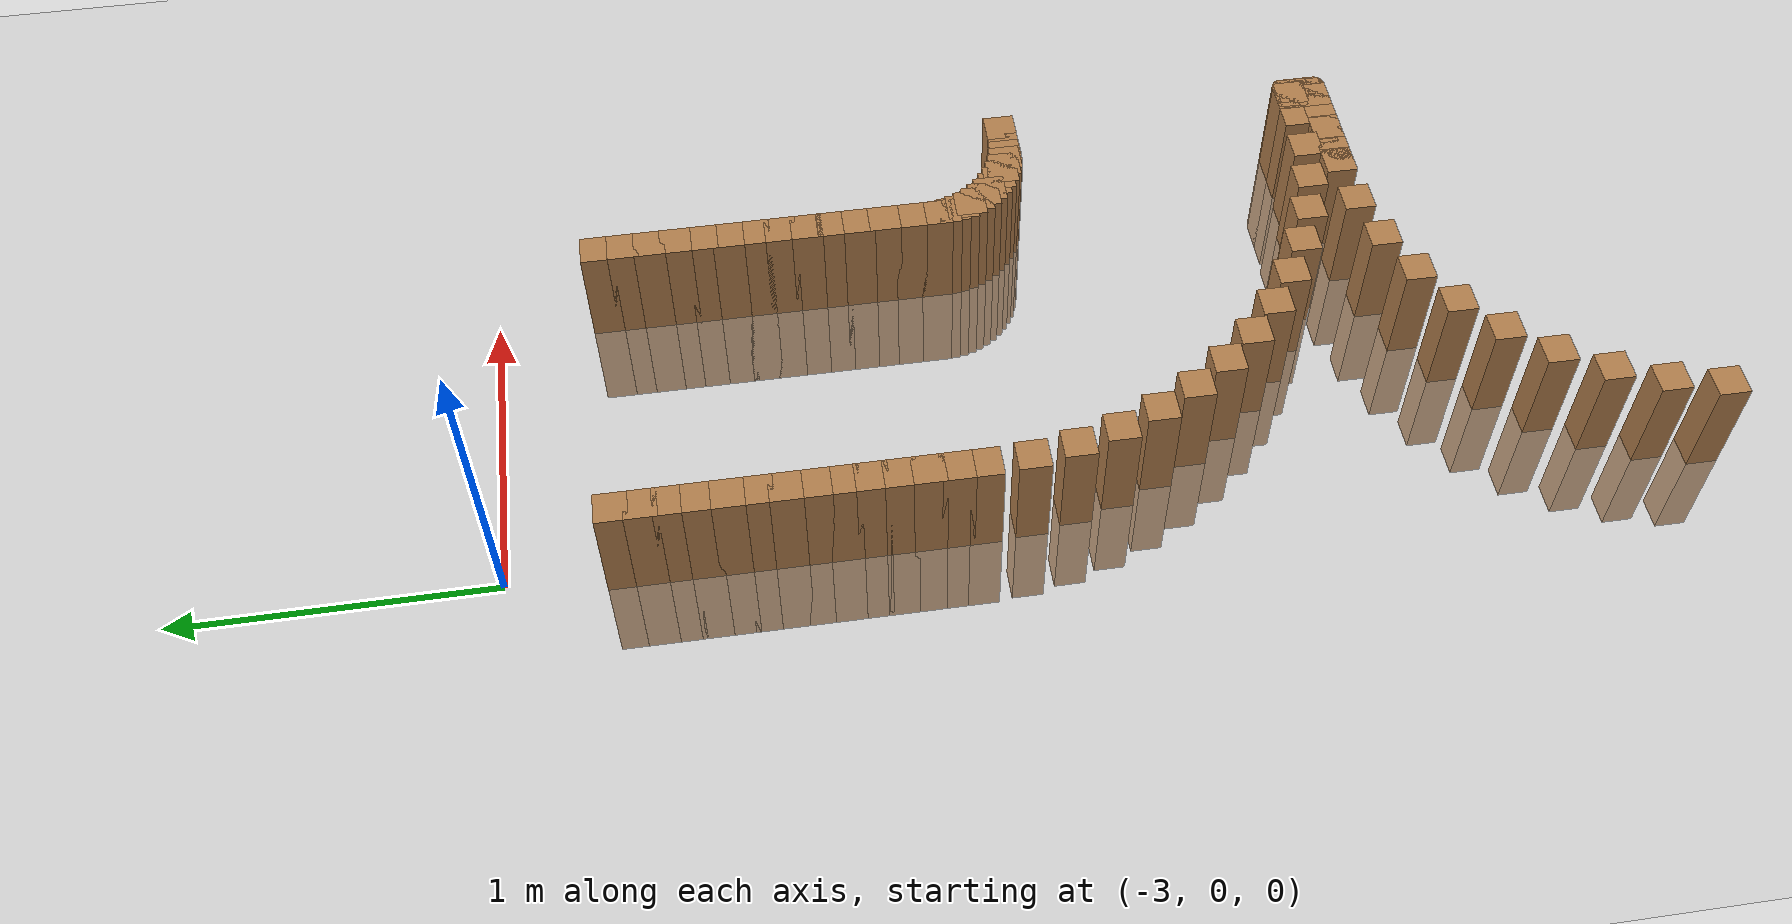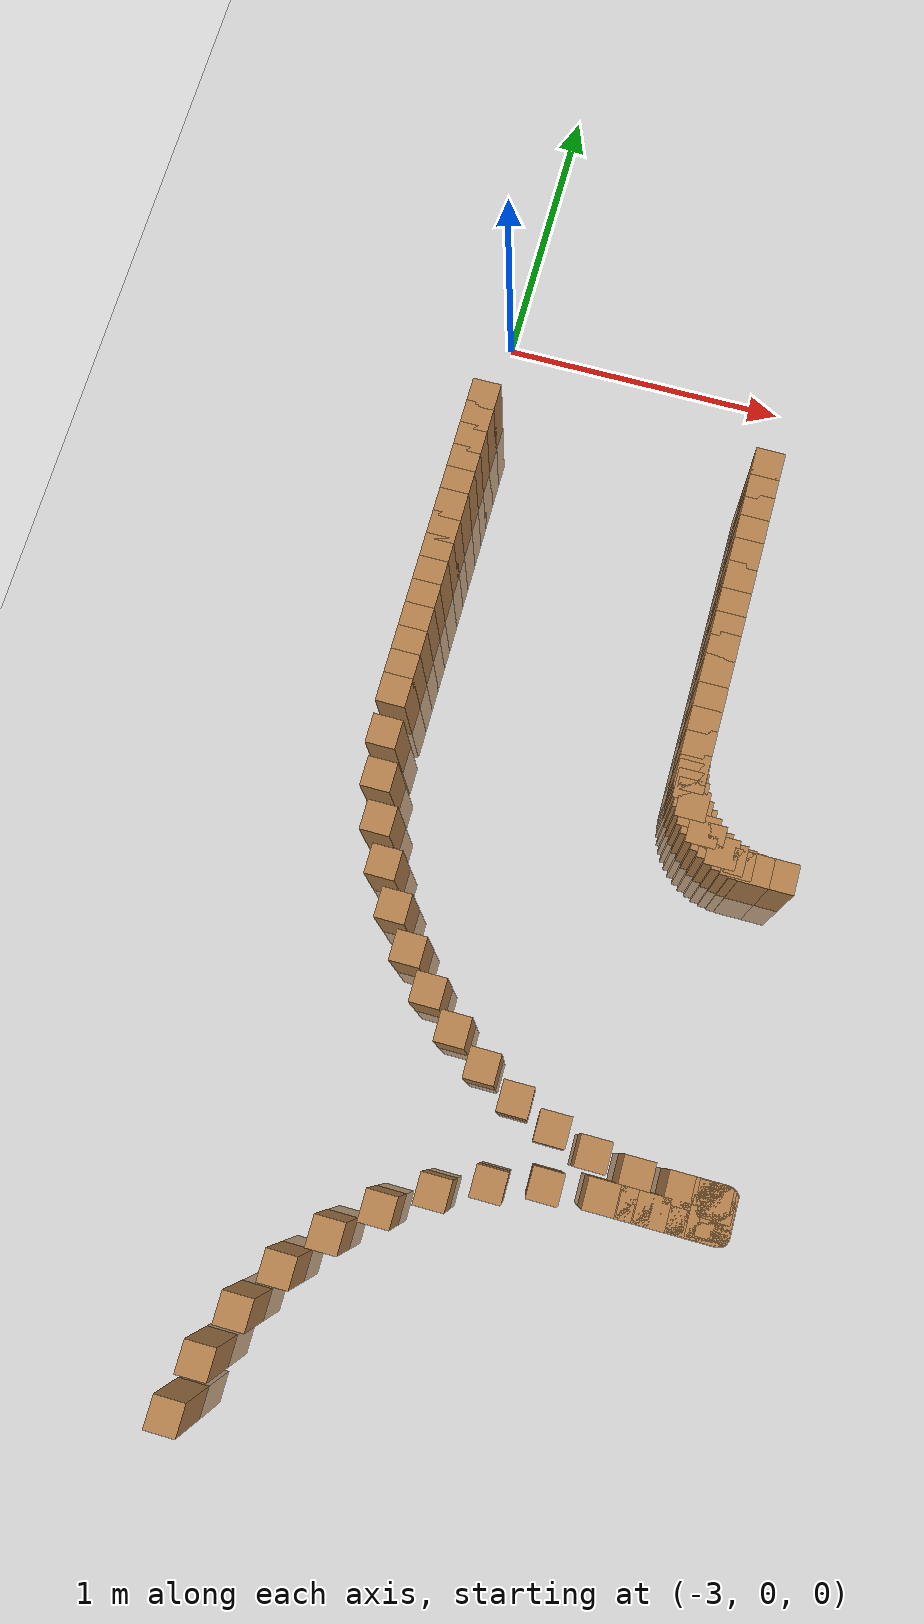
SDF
<sdf version="1.6">
 <world name="default">
  <model name="ground_plane">
   <static>1</static>
   <link name="link">
    <collision name="collision">
     <geometry><plane><normal>0 0 1</normal><size>100 100</size></plane></geometry>
     <surface><friction><ode><mu>100</mu><mu2>50</mu2></ode></friction></surface>
    </collision>
    <visual name="visual">
     <cast_shadows>0</cast_shadows>
     <geometry><plane><normal>0 0 1</normal><size>100 100</size></plane></geometry>
     <material>
      <script><uri>file://media/materials/scripts/gazebo.material</uri><name>Gazebo/Grey</name></script>
     </material>
    </visual>
   </link>
  </model>
  <model name="track">
   <link name="inner_325">
    <pose>-2.000000 -0.354644 0.000000 0 -0 0</pose>
    <collision name="collision"><geometry><box><size>0.1 0.1 0.7</size></box></geometry></collision>
    <visual name="visual">
     <geometry><box><size>0.1 0.1 0.7</size></box></geometry>
     <material>
      <script><uri>file://media/materials/scripts/gazebo.material</uri><name>Gazebo/Wood</name></script>
     </material>
    </visual>
   </link>
   <link name="inner_326">
    <pose>-2.000000 -0.438590 0.000000 0 -0 0</pose>
    <collision name="collision"><geometry><box><size>0.1 0.1 0.7</size></box></geometry></collision>
    <visual name="visual">
     <geometry><box><size>0.1 0.1 0.7</size></box></geometry>
     <material>
      <script><uri>file://media/materials/scripts/gazebo.material</uri><name>Gazebo/Wood</name></script>
     </material>
    </visual>
   </link>
   <link name="inner_327">
    <pose>-2.000000 -0.522536 0.000000 0 -0 0</pose>
    <collision name="collision"><geometry><box><size>0.1 0.1 0.7</size></box></geometry></collision>
    <visual name="visual">
     <geometry><box><size>0.1 0.1 0.7</size></box></geometry>
     <material>
      <script><uri>file://media/materials/scripts/gazebo.material</uri><name>Gazebo/Wood</name></script>
     </material>
    </visual>
   </link>
   <link name="inner_328">
    <pose>-2.000000 -0.606483 0.000000 0 -0 0</pose>
    <collision name="collision"><geometry><box><size>0.1 0.1 0.7</size></box></geometry></collision>
    <visual name="visual">
     <geometry><box><size>0.1 0.1 0.7</size></box></geometry>
     <material>
      <script><uri>file://media/materials/scripts/gazebo.material</uri><name>Gazebo/Wood</name></script>
     </material>
    </visual>
   </link>
   <link name="inner_329">
    <pose>-2.000000 -0.690429 0.000000 0 -0 0</pose>
    <collision name="collision"><geometry><box><size>0.1 0.1 0.7</size></box></geometry></collision>
    <visual name="visual">
     <geometry><box><size>0.1 0.1 0.7</size></box></geometry>
     <material>
      <script><uri>file://media/materials/scripts/gazebo.material</uri><name>Gazebo/Wood</name></script>
     </material>
    </visual>
   </link>
   <link name="inner_330">
    <pose>-2.000000 -0.774375 0.000000 0 -0 0</pose>
    <collision name="collision"><geometry><box><size>0.1 0.1 0.7</size></box></geometry></collision>
    <visual name="visual">
     <geometry><box><size>0.1 0.1 0.7</size></box></geometry>
     <material>
      <script><uri>file://media/materials/scripts/gazebo.material</uri><name>Gazebo/Wood</name></script>
     </material>
    </visual>
   </link>
   <link name="inner_331">
    <pose>-2.000000 -0.858322 0.000000 0 -0 0</pose>
    <collision name="collision"><geometry><box><size>0.1 0.1 0.7</size></box></geometry></collision>
    <visual name="visual">
     <geometry><box><size>0.1 0.1 0.7</size></box></geometry>
     <material>
      <script><uri>file://media/materials/scripts/gazebo.material</uri><name>Gazebo/Wood</name></script>
     </material>
    </visual>
   </link>
   <link name="inner_332">
    <pose>-2.000000 -0.942268 0.000000 0 -0 0</pose>
    <collision name="collision"><geometry><box><size>0.1 0.1 0.7</size></box></geometry></collision>
    <visual name="visual">
     <geometry><box><size>0.1 0.1 0.7</size></box></geometry>
     <material>
      <script><uri>file://media/materials/scripts/gazebo.material</uri><name>Gazebo/Wood</name></script>
     </material>
    </visual>
   </link>
   <link name="inner_333">
    <pose>-2.000000 -1.026214 0.000000 0 -0 0</pose>
    <collision name="collision"><geometry><box><size>0.1 0.1 0.7</size></box></geometry></collision>
    <visual name="visual">
     <geometry><box><size>0.1 0.1 0.7</size></box></geometry>
     <material>
      <script><uri>file://media/materials/scripts/gazebo.material</uri><name>Gazebo/Wood</name></script>
     </material>
    </visual>
   </link>
   <link name="inner_334">
    <pose>-2.000000 -1.110161 0.000000 0 -0 0</pose>
    <collision name="collision"><geometry><box><size>0.1 0.1 0.7</size></box></geometry></collision>
    <visual name="visual">
     <geometry><box><size>0.1 0.1 0.7</size></box></geometry>
     <material>
      <script><uri>file://media/materials/scripts/gazebo.material</uri><name>Gazebo/Wood</name></script>
     </material>
    </visual>
   </link>
   <link name="inner_335">
    <pose>-2.000000 -1.194107 0.000000 0 -0 0</pose>
    <collision name="collision"><geometry><box><size>0.1 0.1 0.7</size></box></geometry></collision>
    <visual name="visual">
     <geometry><box><size>0.1 0.1 0.7</size></box></geometry>
     <material>
      <script><uri>file://media/materials/scripts/gazebo.material</uri><name>Gazebo/Wood</name></script>
     </material>
    </visual>
   </link>
   <link name="inner_336">
    <pose>-2.000000 -1.278053 0.000000 0 -0 0</pose>
    <collision name="collision"><geometry><box><size>0.1 0.1 0.7</size></box></geometry></collision>
    <visual name="visual">
     <geometry><box><size>0.1 0.1 0.7</size></box></geometry>
     <material>
      <script><uri>file://media/materials/scripts/gazebo.material</uri><name>Gazebo/Wood</name></script>
     </material>
    </visual>
   </link>
   <link name="inner_337">
    <pose>-2.000000 -1.362000 0.000000 0 -0 0</pose>
    <collision name="collision"><geometry><box><size>0.1 0.1 0.7</size></box></geometry></collision>
    <visual name="visual">
     <geometry><box><size>0.1 0.1 0.7</size></box></geometry>
     <material>
      <script><uri>file://media/materials/scripts/gazebo.material</uri><name>Gazebo/Wood</name></script>
     </material>
    </visual>
   </link>
   <link name="inner_338">
    <pose>-2.000000 -1.445946 0.000000 0 -0 0</pose>
    <collision name="collision"><geometry><box><size>0.1 0.1 0.7</size></box></geometry></collision>
    <visual name="visual">
     <geometry><box><size>0.1 0.1 0.7</size></box></geometry>
     <material>
      <script><uri>file://media/materials/scripts/gazebo.material</uri><name>Gazebo/Wood</name></script>
     </material>
    </visual>
   </link>
   <link name="inner_339">
    <pose>-1.998301 -1.476207 0.000000 0 -0 0</pose>
    <collision name="collision"><geometry><box><size>0.1 0.1 0.7</size></box></geometry></collision>
    <visual name="visual">
     <geometry><box><size>0.1 0.1 0.7</size></box></geometry>
     <material>
      <script><uri>file://media/materials/scripts/gazebo.material</uri><name>Gazebo/Wood</name></script>
     </material>
    </visual>
   </link>
   <link name="inner_340">
    <pose>-1.993224 -1.506087 0.000000 0 -0 0</pose>
    <collision name="collision"><geometry><box><size>0.1 0.1 0.7</size></box></geometry></collision>
    <visual name="visual">
     <geometry><box><size>0.1 0.1 0.7</size></box></geometry>
     <material>
      <script><uri>file://media/materials/scripts/gazebo.material</uri><name>Gazebo/Wood</name></script>
     </material>
    </visual>
   </link>
   <link name="inner_341">
    <pose>-1.984833 -1.535211 0.000000 0 -0 0</pose>
    <collision name="collision"><geometry><box><size>0.1 0.1 0.7</size></box></geometry></collision>
    <visual name="visual">
     <geometry><box><size>0.1 0.1 0.7</size></box></geometry>
     <material>
      <script><uri>file://media/materials/scripts/gazebo.material</uri><name>Gazebo/Wood</name></script>
     </material>
    </visual>
   </link>
   <link name="inner_342">
    <pose>-1.973235 -1.563212 0.000000 0 -0 0</pose>
    <collision name="collision"><geometry><box><size>0.1 0.1 0.7</size></box></geometry></collision>
    <visual name="visual">
     <geometry><box><size>0.1 0.1 0.7</size></box></geometry>
     <material>
      <script><uri>file://media/materials/scripts/gazebo.material</uri><name>Gazebo/Wood</name></script>
     </material>
    </visual>
   </link>
   <link name="inner_343">
    <pose>-1.958574 -1.589738 0.000000 0 -0 0</pose>
    <collision name="collision"><geometry><box><size>0.1 0.1 0.7</size></box></geometry></collision>
    <visual name="visual">
     <geometry><box><size>0.1 0.1 0.7</size></box></geometry>
     <material>
      <script><uri>file://media/materials/scripts/gazebo.material</uri><name>Gazebo/Wood</name></script>
     </material>
    </visual>
   </link>
   <link name="inner_344">
    <pose>-1.941036 -1.614457 0.000000 0 -0 0</pose>
    <collision name="collision"><geometry><box><size>0.1 0.1 0.7</size></box></geometry></collision>
    <visual name="visual">
     <geometry><box><size>0.1 0.1 0.7</size></box></geometry>
     <material>
      <script><uri>file://media/materials/scripts/gazebo.material</uri><name>Gazebo/Wood</name></script>
     </material>
    </visual>
   </link>
   <link name="inner_345">
    <pose>-1.920840 -1.637056 0.000000 0 -0 0</pose>
    <collision name="collision"><geometry><box><size>0.1 0.1 0.7</size></box></geometry></collision>
    <visual name="visual">
     <geometry><box><size>0.1 0.1 0.7</size></box></geometry>
     <material>
      <script><uri>file://media/materials/scripts/gazebo.material</uri><name>Gazebo/Wood</name></script>
     </material>
    </visual>
   </link>
   <link name="inner_346">
    <pose>-1.898240 -1.657252 0.000000 0 -0 0</pose>
    <collision name="collision"><geometry><box><size>0.1 0.1 0.7</size></box></geometry></collision>
    <visual name="visual">
     <geometry><box><size>0.1 0.1 0.7</size></box></geometry>
     <material>
      <script><uri>file://media/materials/scripts/gazebo.material</uri><name>Gazebo/Wood</name></script>
     </material>
    </visual>
   </link>
   <link name="inner_347">
    <pose>-1.873522 -1.674790 0.000000 0 -0 0</pose>
    <collision name="collision"><geometry><box><size>0.1 0.1 0.7</size></box></geometry></collision>
    <visual name="visual">
     <geometry><box><size>0.1 0.1 0.7</size></box></geometry>
     <material>
      <script><uri>file://media/materials/scripts/gazebo.material</uri><name>Gazebo/Wood</name></script>
     </material>
    </visual>
   </link>
   <link name="inner_348">
    <pose>-1.846996 -1.689451 0.000000 0 -0 0</pose>
    <collision name="collision"><geometry><box><size>0.1 0.1 0.7</size></box></geometry></collision>
    <visual name="visual">
     <geometry><box><size>0.1 0.1 0.7</size></box></geometry>
     <material>
      <script><uri>file://media/materials/scripts/gazebo.material</uri><name>Gazebo/Wood</name></script>
     </material>
    </visual>
   </link>
   <link name="inner_349">
    <pose>-1.818994 -1.701050 0.000000 0 -0 0</pose>
    <collision name="collision"><geometry><box><size>0.1 0.1 0.7</size></box></geometry></collision>
    <visual name="visual">
     <geometry><box><size>0.1 0.1 0.7</size></box></geometry>
     <material>
      <script><uri>file://media/materials/scripts/gazebo.material</uri><name>Gazebo/Wood</name></script>
     </material>
    </visual>
   </link>
   <link name="inner_350">
    <pose>-1.789871 -1.709440 0.000000 0 -0 0</pose>
    <collision name="collision"><geometry><box><size>0.1 0.1 0.7</size></box></geometry></collision>
    <visual name="visual">
     <geometry><box><size>0.1 0.1 0.7</size></box></geometry>
     <material>
      <script><uri>file://media/materials/scripts/gazebo.material</uri><name>Gazebo/Wood</name></script>
     </material>
    </visual>
   </link>
   <link name="inner_351">
    <pose>-1.759990 -1.714517 0.000000 0 -0 0</pose>
    <collision name="collision"><geometry><box><size>0.1 0.1 0.7</size></box></geometry></collision>
    <visual name="visual">
     <geometry><box><size>0.1 0.1 0.7</size></box></geometry>
     <material>
      <script><uri>file://media/materials/scripts/gazebo.material</uri><name>Gazebo/Wood</name></script>
     </material>
    </visual>
   </link>
   <link name="inner_352">
    <pose>-1.729730 -1.716216 0.000000 0 -0 0</pose>
    <collision name="collision"><geometry><box><size>0.1 0.1 0.7</size></box></geometry></collision>
    <visual name="visual">
     <geometry><box><size>0.1 0.1 0.7</size></box></geometry>
     <material>
      <script><uri>file://media/materials/scripts/gazebo.material</uri><name>Gazebo/Wood</name></script>
     </material>
    </visual>
   </link>
   <link name="inner_353">
    <pose>-1.648649 -1.716216 0.000000 0 -0 0</pose>
    <collision name="collision"><geometry><box><size>0.1 0.1 0.7</size></box></geometry></collision>
    <visual name="visual">
     <geometry><box><size>0.1 0.1 0.7</size></box></geometry>
     <material>
      <script><uri>file://media/materials/scripts/gazebo.material</uri><name>Gazebo/Wood</name></script>
     </material>
    </visual>
   </link>
   <link name="outer_325">
    <pose>-3.000000 -0.354644 0.000000 0 -0 0</pose>
    <collision name="collision"><geometry><box><size>0.1 0.1 0.7</size></box></geometry></collision>
    <visual name="visual">
     <geometry><box><size>0.1 0.1 0.7</size></box></geometry>
     <material>
      <script><uri>file://media/materials/scripts/gazebo.material</uri><name>Gazebo/Wood</name></script>
     </material>
    </visual>
   </link>
   <link name="outer_326">
    <pose>-3.000000 -0.438590 0.000000 0 -0 0</pose>
    <collision name="collision"><geometry><box><size>0.1 0.1 0.7</size></box></geometry></collision>
    <visual name="visual">
     <geometry><box><size>0.1 0.1 0.7</size></box></geometry>
     <material>
      <script><uri>file://media/materials/scripts/gazebo.material</uri><name>Gazebo/Wood</name></script>
     </material>
    </visual>
   </link>
   <link name="outer_327">
    <pose>-3.000000 -0.522536 0.000000 0 -0 0</pose>
    <collision name="collision"><geometry><box><size>0.1 0.1 0.7</size></box></geometry></collision>
    <visual name="visual">
     <geometry><box><size>0.1 0.1 0.7</size></box></geometry>
     <material>
      <script><uri>file://media/materials/scripts/gazebo.material</uri><name>Gazebo/Wood</name></script>
     </material>
    </visual>
   </link>
   <link name="outer_328">
    <pose>-3.000000 -0.606483 0.000000 0 -0 0</pose>
    <collision name="collision"><geometry><box><size>0.1 0.1 0.7</size></box></geometry></collision>
    <visual name="visual">
     <geometry><box><size>0.1 0.1 0.7</size></box></geometry>
     <material>
      <script><uri>file://media/materials/scripts/gazebo.material</uri><name>Gazebo/Wood</name></script>
     </material>
    </visual>
   </link>
   <link name="outer_329">
    <pose>-3.000000 -0.690429 0.000000 0 -0 0</pose>
    <collision name="collision"><geometry><box><size>0.1 0.1 0.7</size></box></geometry></collision>
    <visual name="visual">
     <geometry><box><size>0.1 0.1 0.7</size></box></geometry>
     <material>
      <script><uri>file://media/materials/scripts/gazebo.material</uri><name>Gazebo/Wood</name></script>
     </material>
    </visual>
   </link>
   <link name="outer_330">
    <pose>-3.000000 -0.774375 0.000000 0 -0 0</pose>
    <collision name="collision"><geometry><box><size>0.1 0.1 0.7</size></box></geometry></collision>
    <visual name="visual">
     <geometry><box><size>0.1 0.1 0.7</size></box></geometry>
     <material>
      <script><uri>file://media/materials/scripts/gazebo.material</uri><name>Gazebo/Wood</name></script>
     </material>
    </visual>
   </link>
   <link name="outer_331">
    <pose>-3.000000 -0.858322 0.000000 0 -0 0</pose>
    <collision name="collision"><geometry><box><size>0.1 0.1 0.7</size></box></geometry></collision>
    <visual name="visual">
     <geometry><box><size>0.1 0.1 0.7</size></box></geometry>
     <material>
      <script><uri>file://media/materials/scripts/gazebo.material</uri><name>Gazebo/Wood</name></script>
     </material>
    </visual>
   </link>
   <link name="outer_332">
    <pose>-3.000000 -0.942268 0.000000 0 -0 0</pose>
    <collision name="collision"><geometry><box><size>0.1 0.1 0.7</size></box></geometry></collision>
    <visual name="visual">
     <geometry><box><size>0.1 0.1 0.7</size></box></geometry>
     <material>
      <script><uri>file://media/materials/scripts/gazebo.material</uri><name>Gazebo/Wood</name></script>
     </material>
    </visual>
   </link>
   <link name="outer_333">
    <pose>-3.000000 -1.026214 0.000000 0 -0 0</pose>
    <collision name="collision"><geometry><box><size>0.1 0.1 0.7</size></box></geometry></collision>
    <visual name="visual">
     <geometry><box><size>0.1 0.1 0.7</size></box></geometry>
     <material>
      <script><uri>file://media/materials/scripts/gazebo.material</uri><name>Gazebo/Wood</name></script>
     </material>
    </visual>
   </link>
   <link name="outer_334">
    <pose>-3.000000 -1.110161 0.000000 0 -0 0</pose>
    <collision name="collision"><geometry><box><size>0.1 0.1 0.7</size></box></geometry></collision>
    <visual name="visual">
     <geometry><box><size>0.1 0.1 0.7</size></box></geometry>
     <material>
      <script><uri>file://media/materials/scripts/gazebo.material</uri><name>Gazebo/Wood</name></script>
     </material>
    </visual>
   </link>
   <link name="outer_335">
    <pose>-3.000000 -1.194107 0.000000 0 -0 0</pose>
    <collision name="collision"><geometry><box><size>0.1 0.1 0.7</size></box></geometry></collision>
    <visual name="visual">
     <geometry><box><size>0.1 0.1 0.7</size></box></geometry>
     <material>
      <script><uri>file://media/materials/scripts/gazebo.material</uri><name>Gazebo/Wood</name></script>
     </material>
    </visual>
   </link>
   <link name="outer_336">
    <pose>-3.000000 -1.278053 0.000000 0 -0 0</pose>
    <collision name="collision"><geometry><box><size>0.1 0.1 0.7</size></box></geometry></collision>
    <visual name="visual">
     <geometry><box><size>0.1 0.1 0.7</size></box></geometry>
     <material>
      <script><uri>file://media/materials/scripts/gazebo.material</uri><name>Gazebo/Wood</name></script>
     </material>
    </visual>
   </link>
   <link name="outer_337">
    <pose>-3.000000 -1.362000 0.000000 0 -0 0</pose>
    <collision name="collision"><geometry><box><size>0.1 0.1 0.7</size></box></geometry></collision>
    <visual name="visual">
     <geometry><box><size>0.1 0.1 0.7</size></box></geometry>
     <material>
      <script><uri>file://media/materials/scripts/gazebo.material</uri><name>Gazebo/Wood</name></script>
     </material>
    </visual>
   </link>
   <link name="outer_338">
    <pose>-3.000000 -1.445946 0.000000 0 -0 0</pose>
    <collision name="collision"><geometry><box><size>0.1 0.1 0.7</size></box></geometry></collision>
    <visual name="visual">
     <geometry><box><size>0.1 0.1 0.7</size></box></geometry>
     <material>
      <script><uri>file://media/materials/scripts/gazebo.material</uri><name>Gazebo/Wood</name></script>
     </material>
    </visual>
   </link>
   <link name="outer_339">
    <pose>-2.992013 -1.588171 0.000000 0 -0 0</pose>
    <collision name="collision"><geometry><box><size>0.1 0.1 0.7</size></box></geometry></collision>
    <visual name="visual">
     <geometry><box><size>0.1 0.1 0.7</size></box></geometry>
     <material>
      <script><uri>file://media/materials/scripts/gazebo.material</uri><name>Gazebo/Wood</name></script>
     </material>
    </visual>
   </link>
   <link name="outer_340">
    <pose>-2.968152 -1.728608 0.000000 0 -0 0</pose>
    <collision name="collision"><geometry><box><size>0.1 0.1 0.7</size></box></geometry></collision>
    <visual name="visual">
     <geometry><box><size>0.1 0.1 0.7</size></box></geometry>
     <material>
      <script><uri>file://media/materials/scripts/gazebo.material</uri><name>Gazebo/Wood</name></script>
     </material>
    </visual>
   </link>
   <link name="outer_341">
    <pose>-2.928717 -1.865490 0.000000 0 -0 0</pose>
    <collision name="collision"><geometry><box><size>0.1 0.1 0.7</size></box></geometry></collision>
    <visual name="visual">
     <geometry><box><size>0.1 0.1 0.7</size></box></geometry>
     <material>
      <script><uri>file://media/materials/scripts/gazebo.material</uri><name>Gazebo/Wood</name></script>
     </material>
    </visual>
   </link>
   <link name="outer_342">
    <pose>-2.874204 -1.997096 0.000000 0 -0 0</pose>
    <collision name="collision"><geometry><box><size>0.1 0.1 0.7</size></box></geometry></collision>
    <visual name="visual">
     <geometry><box><size>0.1 0.1 0.7</size></box></geometry>
     <material>
      <script><uri>file://media/materials/scripts/gazebo.material</uri><name>Gazebo/Wood</name></script>
     </material>
    </visual>
   </link>
   <link name="outer_343">
    <pose>-2.805298 -2.121770 0.000000 0 -0 0</pose>
    <collision name="collision"><geometry><box><size>0.1 0.1 0.7</size></box></geometry></collision>
    <visual name="visual">
     <geometry><box><size>0.1 0.1 0.7</size></box></geometry>
     <material>
      <script><uri>file://media/materials/scripts/gazebo.material</uri><name>Gazebo/Wood</name></script>
     </material>
    </visual>
   </link>
   <link name="outer_344">
    <pose>-2.722867 -2.237947 0.000000 0 -0 0</pose>
    <collision name="collision"><geometry><box><size>0.1 0.1 0.7</size></box></geometry></collision>
    <visual name="visual">
     <geometry><box><size>0.1 0.1 0.7</size></box></geometry>
     <material>
      <script><uri>file://media/materials/scripts/gazebo.material</uri><name>Gazebo/Wood</name></script>
     </material>
    </visual>
   </link>
   <link name="outer_345">
    <pose>-2.627946 -2.344163 0.000000 0 -0 0</pose>
    <collision name="collision"><geometry><box><size>0.1 0.1 0.7</size></box></geometry></collision>
    <visual name="visual">
     <geometry><box><size>0.1 0.1 0.7</size></box></geometry>
     <material>
      <script><uri>file://media/materials/scripts/gazebo.material</uri><name>Gazebo/Wood</name></script>
     </material>
    </visual>
   </link>
   <link name="outer_346">
    <pose>-2.521730 -2.439083 0.000000 0 -0 0</pose>
    <collision name="collision"><geometry><box><size>0.1 0.1 0.7</size></box></geometry></collision>
    <visual name="visual">
     <geometry><box><size>0.1 0.1 0.7</size></box></geometry>
     <material>
      <script><uri>file://media/materials/scripts/gazebo.material</uri><name>Gazebo/Wood</name></script>
     </material>
    </visual>
   </link>
   <link name="outer_347">
    <pose>-2.405554 -2.521515 0.000000 0 -0 0</pose>
    <collision name="collision"><geometry><box><size>0.1 0.1 0.7</size></box></geometry></collision>
    <visual name="visual">
     <geometry><box><size>0.1 0.1 0.7</size></box></geometry>
     <material>
      <script><uri>file://media/materials/scripts/gazebo.material</uri><name>Gazebo/Wood</name></script>
     </material>
    </visual>
   </link>
   <link name="outer_348">
    <pose>-2.280879 -2.590420 0.000000 0 -0 0</pose>
    <collision name="collision"><geometry><box><size>0.1 0.1 0.7</size></box></geometry></collision>
    <visual name="visual">
     <geometry><box><size>0.1 0.1 0.7</size></box></geometry>
     <material>
      <script><uri>file://media/materials/scripts/gazebo.material</uri><name>Gazebo/Wood</name></script>
     </material>
    </visual>
   </link>
   <link name="outer_349">
    <pose>-2.149273 -2.644933 0.000000 0 -0 0</pose>
    <collision name="collision"><geometry><box><size>0.1 0.1 0.7</size></box></geometry></collision>
    <visual name="visual">
     <geometry><box><size>0.1 0.1 0.7</size></box></geometry>
     <material>
      <script><uri>file://media/materials/scripts/gazebo.material</uri><name>Gazebo/Wood</name></script>
     </material>
    </visual>
   </link>
   <link name="outer_350">
    <pose>-2.012391 -2.684368 0.000000 0 -0 0</pose>
    <collision name="collision"><geometry><box><size>0.1 0.1 0.7</size></box></geometry></collision>
    <visual name="visual">
     <geometry><box><size>0.1 0.1 0.7</size></box></geometry>
     <material>
      <script><uri>file://media/materials/scripts/gazebo.material</uri><name>Gazebo/Wood</name></script>
     </material>
    </visual>
   </link>
   <link name="outer_351">
    <pose>-1.871955 -2.708229 0.000000 0 -0 0</pose>
    <collision name="collision"><geometry><box><size>0.1 0.1 0.7</size></box></geometry></collision>
    <visual name="visual">
     <geometry><box><size>0.1 0.1 0.7</size></box></geometry>
     <material>
      <script><uri>file://media/materials/scripts/gazebo.material</uri><name>Gazebo/Wood</name></script>
     </material>
    </visual>
   </link>
   <link name="outer_352">
    <pose>-1.729730 -2.716216 0.000000 0 -0 0</pose>
    <collision name="collision"><geometry><box><size>0.1 0.1 0.7</size></box></geometry></collision>
    <visual name="visual">
     <geometry><box><size>0.1 0.1 0.7</size></box></geometry>
     <material>
      <script><uri>file://media/materials/scripts/gazebo.material</uri><name>Gazebo/Wood</name></script>
     </material>
    </visual>
   </link>
   <link name="outer_353">
    <pose>-1.648649 -2.716216 0.000000 0 -0 0</pose>
    <collision name="collision"><geometry><box><size>0.1 0.1 0.7</size></box></geometry></collision>
    <visual name="visual">
     <geometry><box><size>0.1 0.1 0.7</size></box></geometry>
     <material>
      <script><uri>file://media/materials/scripts/gazebo.material</uri><name>Gazebo/Wood</name></script>
     </material>
    </visual>
   </link>
   <link name="outer_354">
    <pose>-1.645386 -2.716348 0.000000 0 -0 0</pose>
    <collision name="collision"><geometry><box><size>0.1 0.1 0.7</size></box></geometry></collision>
    <visual name="visual">
     <geometry><box><size>0.1 0.1 0.7</size></box></geometry>
     <material>
      <script><uri>file://media/materials/scripts/gazebo.material</uri><name>Gazebo/Wood</name></script>
     </material>
    </visual>
   </link>
   <link name="outer_355">
    <pose>-1.642145 -2.716741 0.000000 0 -0 0</pose>
    <collision name="collision"><geometry><box><size>0.1 0.1 0.7</size></box></geometry></collision>
    <visual name="visual">
     <geometry><box><size>0.1 0.1 0.7</size></box></geometry>
     <material>
      <script><uri>file://media/materials/scripts/gazebo.material</uri><name>Gazebo/Wood</name></script>
     </material>
    </visual>
   </link>
   <link name="outer_356">
    <pose>-1.638947 -2.717394 0.000000 0 -0 0</pose>
    <collision name="collision"><geometry><box><size>0.1 0.1 0.7</size></box></geometry></collision>
    <visual name="visual">
     <geometry><box><size>0.1 0.1 0.7</size></box></geometry>
     <material>
      <script><uri>file://media/materials/scripts/gazebo.material</uri><name>Gazebo/Wood</name></script>
     </material>
    </visual>
   </link>
   <link name="outer_357">
    <pose>-1.635811 -2.718303 0.000000 0 -0 0</pose>
    <collision name="collision"><geometry><box><size>0.1 0.1 0.7</size></box></geometry></collision>
    <visual name="visual">
     <geometry><box><size>0.1 0.1 0.7</size></box></geometry>
     <material>
      <script><uri>file://media/materials/scripts/gazebo.material</uri><name>Gazebo/Wood</name></script>
     </material>
    </visual>
   </link>
   <link name="outer_358">
    <pose>-1.632758 -2.719460 0.000000 0 -0 0</pose>
    <collision name="collision"><geometry><box><size>0.1 0.1 0.7</size></box></geometry></collision>
    <visual name="visual">
     <geometry><box><size>0.1 0.1 0.7</size></box></geometry>
     <material>
      <script><uri>file://media/materials/scripts/gazebo.material</uri><name>Gazebo/Wood</name></script>
     </material>
    </visual>
   </link>
   <link name="outer_359">
    <pose>-1.629809 -2.720860 0.000000 0 -0 0</pose>
    <collision name="collision"><geometry><box><size>0.1 0.1 0.7</size></box></geometry></collision>
    <visual name="visual">
     <geometry><box><size>0.1 0.1 0.7</size></box></geometry>
     <material>
      <script><uri>file://media/materials/scripts/gazebo.material</uri><name>Gazebo/Wood</name></script>
     </material>
    </visual>
   </link>
   <link name="outer_360">
    <pose>-1.626981 -2.722492 0.000000 0 -0 0</pose>
    <collision name="collision"><geometry><box><size>0.1 0.1 0.7</size></box></geometry></collision>
    <visual name="visual">
     <geometry><box><size>0.1 0.1 0.7</size></box></geometry>
     <material>
      <script><uri>file://media/materials/scripts/gazebo.material</uri><name>Gazebo/Wood</name></script>
     </material>
    </visual>
   </link>
   <link name="outer_361">
    <pose>-1.624294 -2.724347 0.000000 0 -0 0</pose>
    <collision name="collision"><geometry><box><size>0.1 0.1 0.7</size></box></geometry></collision>
    <visual name="visual">
     <geometry><box><size>0.1 0.1 0.7</size></box></geometry>
     <material>
      <script><uri>file://media/materials/scripts/gazebo.material</uri><name>Gazebo/Wood</name></script>
     </material>
    </visual>
   </link>
   <link name="outer_362">
    <pose>-1.621765 -2.726412 0.000000 0 -0 0</pose>
    <collision name="collision"><geometry><box><size>0.1 0.1 0.7</size></box></geometry></collision>
    <visual name="visual">
     <geometry><box><size>0.1 0.1 0.7</size></box></geometry>
     <material>
      <script><uri>file://media/materials/scripts/gazebo.material</uri><name>Gazebo/Wood</name></script>
     </material>
    </visual>
   </link>
   <link name="outer_363">
    <pose>-1.619411 -2.728673 0.000000 0 -0 0</pose>
    <collision name="collision"><geometry><box><size>0.1 0.1 0.7</size></box></geometry></collision>
    <visual name="visual">
     <geometry><box><size>0.1 0.1 0.7</size></box></geometry>
     <material>
      <script><uri>file://media/materials/scripts/gazebo.material</uri><name>Gazebo/Wood</name></script>
     </material>
    </visual>
   </link>
   <link name="outer_364">
    <pose>-1.617246 -2.731117 0.000000 0 -0 0</pose>
    <collision name="collision"><geometry><box><size>0.1 0.1 0.7</size></box></geometry></collision>
    <visual name="visual">
     <geometry><box><size>0.1 0.1 0.7</size></box></geometry>
     <material>
      <script><uri>file://media/materials/scripts/gazebo.material</uri><name>Gazebo/Wood</name></script>
     </material>
    </visual>
   </link>
   <link name="outer_365">
    <pose>-1.615284 -2.733727 0.000000 0 -0 0</pose>
    <collision name="collision"><geometry><box><size>0.1 0.1 0.7</size></box></geometry></collision>
    <visual name="visual">
     <geometry><box><size>0.1 0.1 0.7</size></box></geometry>
     <material>
      <script><uri>file://media/materials/scripts/gazebo.material</uri><name>Gazebo/Wood</name></script>
     </material>
    </visual>
   </link>
   <link name="outer_366">
    <pose>-1.613540 -2.736486 0.000000 0 -0 0</pose>
    <collision name="collision"><geometry><box><size>0.1 0.1 0.7</size></box></geometry></collision>
    <visual name="visual">
     <geometry><box><size>0.1 0.1 0.7</size></box></geometry>
     <material>
      <script><uri>file://media/materials/scripts/gazebo.material</uri><name>Gazebo/Wood</name></script>
     </material>
    </visual>
   </link>
   <link name="outer_367">
    <pose>-1.612022 -2.739377 0.000000 0 -0 0</pose>
    <collision name="collision"><geometry><box><size>0.1 0.1 0.7</size></box></geometry></collision>
    <visual name="visual">
     <geometry><box><size>0.1 0.1 0.7</size></box></geometry>
     <material>
      <script><uri>file://media/materials/scripts/gazebo.material</uri><name>Gazebo/Wood</name></script>
     </material>
    </visual>
   </link>
   <link name="outer_378">
    <pose>-1.612022 -2.774136 0.000000 0 -0 0</pose>
    <collision name="collision"><geometry><box><size>0.1 0.1 0.7</size></box></geometry></collision>
    <visual name="visual">
     <geometry><box><size>0.1 0.1 0.7</size></box></geometry>
     <material>
      <script><uri>file://media/materials/scripts/gazebo.material</uri><name>Gazebo/Wood</name></script>
     </material>
    </visual>
   </link>
   <link name="outer_379">
    <pose>-1.613540 -2.777027 0.000000 0 -0 0</pose>
    <collision name="collision"><geometry><box><size>0.1 0.1 0.7</size></box></geometry></collision>
    <visual name="visual">
     <geometry><box><size>0.1 0.1 0.7</size></box></geometry>
     <material>
      <script><uri>file://media/materials/scripts/gazebo.material</uri><name>Gazebo/Wood</name></script>
     </material>
    </visual>
   </link>
   <link name="outer_380">
    <pose>-1.615284 -2.779786 0.000000 0 -0 0</pose>
    <collision name="collision"><geometry><box><size>0.1 0.1 0.7</size></box></geometry></collision>
    <visual name="visual">
     <geometry><box><size>0.1 0.1 0.7</size></box></geometry>
     <material>
      <script><uri>file://media/materials/scripts/gazebo.material</uri><name>Gazebo/Wood</name></script>
     </material>
    </visual>
   </link>
   <link name="outer_381">
    <pose>-1.617246 -2.782396 0.000000 0 -0 0</pose>
    <collision name="collision"><geometry><box><size>0.1 0.1 0.7</size></box></geometry></collision>
    <visual name="visual">
     <geometry><box><size>0.1 0.1 0.7</size></box></geometry>
     <material>
      <script><uri>file://media/materials/scripts/gazebo.material</uri><name>Gazebo/Wood</name></script>
     </material>
    </visual>
   </link>
   <link name="outer_382">
    <pose>-1.619411 -2.784840 0.000000 0 -0 0</pose>
    <collision name="collision"><geometry><box><size>0.1 0.1 0.7</size></box></geometry></collision>
    <visual name="visual">
     <geometry><box><size>0.1 0.1 0.7</size></box></geometry>
     <material>
      <script><uri>file://media/materials/scripts/gazebo.material</uri><name>Gazebo/Wood</name></script>
     </material>
    </visual>
   </link>
   <link name="outer_383">
    <pose>-1.621765 -2.787102 0.000000 0 -0 0</pose>
    <collision name="collision"><geometry><box><size>0.1 0.1 0.7</size></box></geometry></collision>
    <visual name="visual">
     <geometry><box><size>0.1 0.1 0.7</size></box></geometry>
     <material>
      <script><uri>file://media/materials/scripts/gazebo.material</uri><name>Gazebo/Wood</name></script>
     </material>
    </visual>
   </link>
   <link name="outer_384">
    <pose>-1.624294 -2.789167 0.000000 0 -0 0</pose>
    <collision name="collision"><geometry><box><size>0.1 0.1 0.7</size></box></geometry></collision>
    <visual name="visual">
     <geometry><box><size>0.1 0.1 0.7</size></box></geometry>
     <material>
      <script><uri>file://media/materials/scripts/gazebo.material</uri><name>Gazebo/Wood</name></script>
     </material>
    </visual>
   </link>
   <link name="outer_385">
    <pose>-1.626981 -2.791021 0.000000 0 -0 0</pose>
    <collision name="collision"><geometry><box><size>0.1 0.1 0.7</size></box></geometry></collision>
    <visual name="visual">
     <geometry><box><size>0.1 0.1 0.7</size></box></geometry>
     <material>
      <script><uri>file://media/materials/scripts/gazebo.material</uri><name>Gazebo/Wood</name></script>
     </material>
    </visual>
   </link>
   <link name="outer_386">
    <pose>-1.629809 -2.792654 0.000000 0 -0 0</pose>
    <collision name="collision"><geometry><box><size>0.1 0.1 0.7</size></box></geometry></collision>
    <visual name="visual">
     <geometry><box><size>0.1 0.1 0.7</size></box></geometry>
     <material>
      <script><uri>file://media/materials/scripts/gazebo.material</uri><name>Gazebo/Wood</name></script>
     </material>
    </visual>
   </link>
   <link name="outer_387">
    <pose>-1.632758 -2.794053 0.000000 0 -0 0</pose>
    <collision name="collision"><geometry><box><size>0.1 0.1 0.7</size></box></geometry></collision>
    <visual name="visual">
     <geometry><box><size>0.1 0.1 0.7</size></box></geometry>
     <material>
      <script><uri>file://media/materials/scripts/gazebo.material</uri><name>Gazebo/Wood</name></script>
     </material>
    </visual>
   </link>
   <link name="outer_388">
    <pose>-1.635811 -2.795211 0.000000 0 -0 0</pose>
    <collision name="collision"><geometry><box><size>0.1 0.1 0.7</size></box></geometry></collision>
    <visual name="visual">
     <geometry><box><size>0.1 0.1 0.7</size></box></geometry>
     <material>
      <script><uri>file://media/materials/scripts/gazebo.material</uri><name>Gazebo/Wood</name></script>
     </material>
    </visual>
   </link>
   <link name="outer_389">
    <pose>-1.638947 -2.796119 0.000000 0 -0 0</pose>
    <collision name="collision"><geometry><box><size>0.1 0.1 0.7</size></box></geometry></collision>
    <visual name="visual">
     <geometry><box><size>0.1 0.1 0.7</size></box></geometry>
     <material>
      <script><uri>file://media/materials/scripts/gazebo.material</uri><name>Gazebo/Wood</name></script>
     </material>
    </visual>
   </link>
   <link name="outer_390">
    <pose>-1.642145 -2.796772 0.000000 0 -0 0</pose>
    <collision name="collision"><geometry><box><size>0.1 0.1 0.7</size></box></geometry></collision>
    <visual name="visual">
     <geometry><box><size>0.1 0.1 0.7</size></box></geometry>
     <material>
      <script><uri>file://media/materials/scripts/gazebo.material</uri><name>Gazebo/Wood</name></script>
     </material>
    </visual>
   </link>
   <link name="outer_391">
    <pose>-1.645386 -2.797166 0.000000 0 -0 0</pose>
    <collision name="collision"><geometry><box><size>0.1 0.1 0.7</size></box></geometry></collision>
    <visual name="visual">
     <geometry><box><size>0.1 0.1 0.7</size></box></geometry>
     <material>
      <script><uri>file://media/materials/scripts/gazebo.material</uri><name>Gazebo/Wood</name></script>
     </material>
    </visual>
   </link>
   <link name="outer_392">
    <pose>-1.648649 -2.797297 0.000000 0 -0 0</pose>
    <collision name="collision"><geometry><box><size>0.1 0.1 0.7</size></box></geometry></collision>
    <visual name="visual">
     <geometry><box><size>0.1 0.1 0.7</size></box></geometry>
     <material>
      <script><uri>file://media/materials/scripts/gazebo.material</uri><name>Gazebo/Wood</name></script>
     </material>
    </visual>
   </link>
   <link name="outer_393">
    <pose>-1.700450 -2.797297 0.000000 0 -0 0</pose>
    <collision name="collision"><geometry><box><size>0.1 0.1 0.7</size></box></geometry></collision>
    <visual name="visual">
     <geometry><box><size>0.1 0.1 0.7</size></box></geometry>
     <material>
      <script><uri>file://media/materials/scripts/gazebo.material</uri><name>Gazebo/Wood</name></script>
     </material>
    </visual>
   </link>
   <link name="outer_394">
    <pose>-1.752252 -2.797297 0.000000 0 -0 0</pose>
    <collision name="collision"><geometry><box><size>0.1 0.1 0.7</size></box></geometry></collision>
    <visual name="visual">
     <geometry><box><size>0.1 0.1 0.7</size></box></geometry>
     <material>
      <script><uri>file://media/materials/scripts/gazebo.material</uri><name>Gazebo/Wood</name></script>
     </material>
    </visual>
   </link>
   <link name="outer_395">
    <pose>-1.804054 -2.797297 0.000000 0 -0 0</pose>
    <collision name="collision"><geometry><box><size>0.1 0.1 0.7</size></box></geometry></collision>
    <visual name="visual">
     <geometry><box><size>0.1 0.1 0.7</size></box></geometry>
     <material>
      <script><uri>file://media/materials/scripts/gazebo.material</uri><name>Gazebo/Wood</name></script>
     </material>
    </visual>
   </link>
   <link name="outer_396">
    <pose>-1.855856 -2.797297 0.000000 0 -0 0</pose>
    <collision name="collision"><geometry><box><size>0.1 0.1 0.7</size></box></geometry></collision>
    <visual name="visual">
     <geometry><box><size>0.1 0.1 0.7</size></box></geometry>
     <material>
      <script><uri>file://media/materials/scripts/gazebo.material</uri><name>Gazebo/Wood</name></script>
     </material>
    </visual>
   </link>
   <link name="outer_397">
    <pose>-1.907658 -2.797297 0.000000 0 -0 0</pose>
    <collision name="collision"><geometry><box><size>0.1 0.1 0.7</size></box></geometry></collision>
    <visual name="visual">
     <geometry><box><size>0.1 0.1 0.7</size></box></geometry>
     <material>
      <script><uri>file://media/materials/scripts/gazebo.material</uri><name>Gazebo/Wood</name></script>
     </material>
    </visual>
   </link>
   <link name="outer_398">
    <pose>-1.959459 -2.797297 0.000000 0 -0 0</pose>
    <collision name="collision"><geometry><box><size>0.1 0.1 0.7</size></box></geometry></collision>
    <visual name="visual">
     <geometry><box><size>0.1 0.1 0.7</size></box></geometry>
     <material>
      <script><uri>file://media/materials/scripts/gazebo.material</uri><name>Gazebo/Wood</name></script>
     </material>
    </visual>
   </link>
   <link name="outer_399">
    <pose>-2.128578 -2.810607 0.000000 0 -0 0</pose>
    <collision name="collision"><geometry><box><size>0.1 0.1 0.7</size></box></geometry></collision>
    <visual name="visual">
     <geometry><box><size>0.1 0.1 0.7</size></box></geometry>
     <material>
      <script><uri>file://media/materials/scripts/gazebo.material</uri><name>Gazebo/Wood</name></script>
     </material>
    </visual>
   </link>
   <link name="outer_400">
    <pose>-2.293532 -2.850209 0.000000 0 -0 0</pose>
    <collision name="collision"><geometry><box><size>0.1 0.1 0.7</size></box></geometry></collision>
    <visual name="visual">
     <geometry><box><size>0.1 0.1 0.7</size></box></geometry>
     <material>
      <script><uri>file://media/materials/scripts/gazebo.material</uri><name>Gazebo/Wood</name></script>
     </material>
    </visual>
   </link>
   <link name="outer_401">
    <pose>-2.450260 -2.915128 0.000000 0 -0 0</pose>
    <collision name="collision"><geometry><box><size>0.1 0.1 0.7</size></box></geometry></collision>
    <visual name="visual">
     <geometry><box><size>0.1 0.1 0.7</size></box></geometry>
     <material>
      <script><uri>file://media/materials/scripts/gazebo.material</uri><name>Gazebo/Wood</name></script>
     </material>
    </visual>
   </link>
   <link name="outer_402">
    <pose>-2.594903 -3.003765 0.000000 0 -0 0</pose>
    <collision name="collision"><geometry><box><size>0.1 0.1 0.7</size></box></geometry></collision>
    <visual name="visual">
     <geometry><box><size>0.1 0.1 0.7</size></box></geometry>
     <material>
      <script><uri>file://media/materials/scripts/gazebo.material</uri><name>Gazebo/Wood</name></script>
     </material>
    </visual>
   </link>
   <link name="outer_403">
    <pose>-2.723899 -3.113939 0.000000 0 -0 0</pose>
    <collision name="collision"><geometry><box><size>0.1 0.1 0.7</size></box></geometry></collision>
    <visual name="visual">
     <geometry><box><size>0.1 0.1 0.7</size></box></geometry>
     <material>
      <script><uri>file://media/materials/scripts/gazebo.material</uri><name>Gazebo/Wood</name></script>
     </material>
    </visual>
   </link>
   <link name="outer_404">
    <pose>-2.834072 -3.242935 0.000000 0 -0 0</pose>
    <collision name="collision"><geometry><box><size>0.1 0.1 0.7</size></box></geometry></collision>
    <visual name="visual">
     <geometry><box><size>0.1 0.1 0.7</size></box></geometry>
     <material>
      <script><uri>file://media/materials/scripts/gazebo.material</uri><name>Gazebo/Wood</name></script>
     </material>
    </visual>
   </link>
   <link name="outer_405">
    <pose>-2.922710 -3.387578 0.000000 0 -0 0</pose>
    <collision name="collision"><geometry><box><size>0.1 0.1 0.7</size></box></geometry></collision>
    <visual name="visual">
     <geometry><box><size>0.1 0.1 0.7</size></box></geometry>
     <material>
      <script><uri>file://media/materials/scripts/gazebo.material</uri><name>Gazebo/Wood</name></script>
     </material>
    </visual>
   </link>
   <link name="outer_406">
    <pose>-2.987629 -3.544306 0.000000 0 -0 0</pose>
    <collision name="collision"><geometry><box><size>0.1 0.1 0.7</size></box></geometry></collision>
    <visual name="visual">
     <geometry><box><size>0.1 0.1 0.7</size></box></geometry>
     <material>
      <script><uri>file://media/materials/scripts/gazebo.material</uri><name>Gazebo/Wood</name></script>
     </material>
    </visual>
   </link>
   <link name="outer_407">
    <pose>-3.027231 -3.709260 0.000000 0 -0 0</pose>
    <collision name="collision"><geometry><box><size>0.1 0.1 0.7</size></box></geometry></collision>
    <visual name="visual">
     <geometry><box><size>0.1 0.1 0.7</size></box></geometry>
     <material>
      <script><uri>file://media/materials/scripts/gazebo.material</uri><name>Gazebo/Wood</name></script>
     </material>
    </visual>
   </link>
   <static>1</static>
  </model>
 </world>
</sdf>
